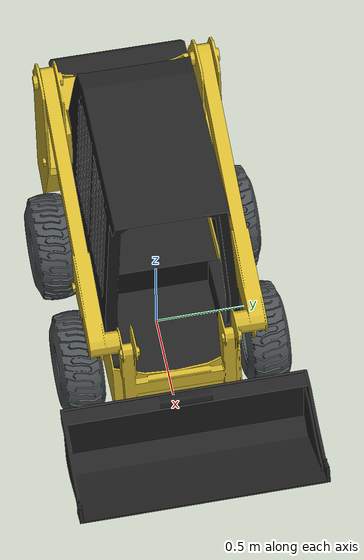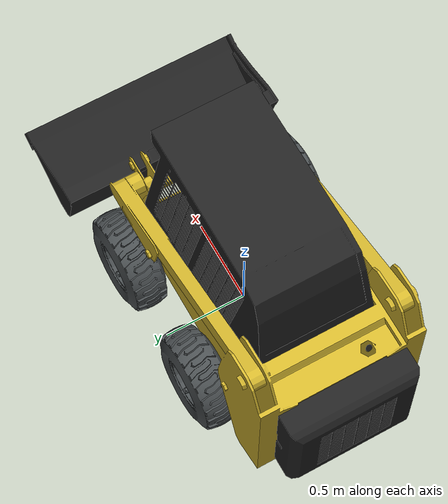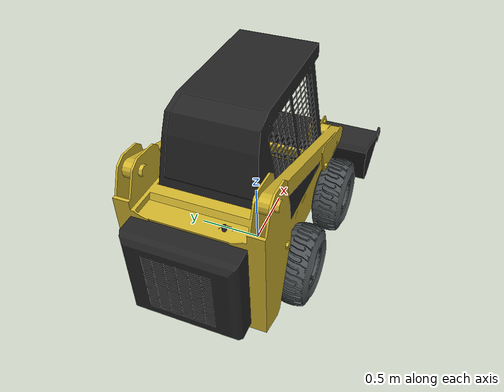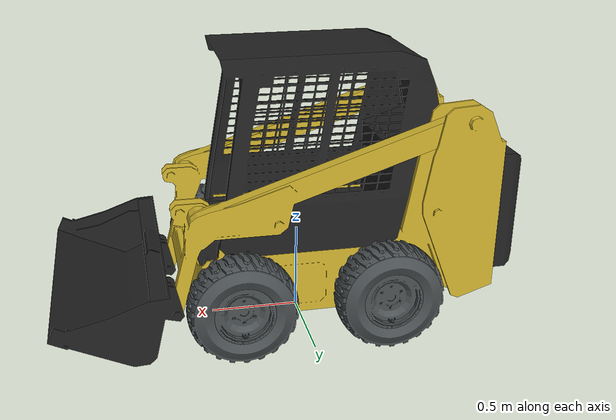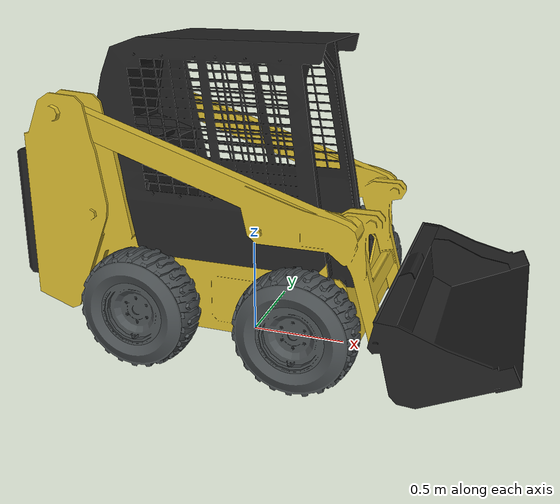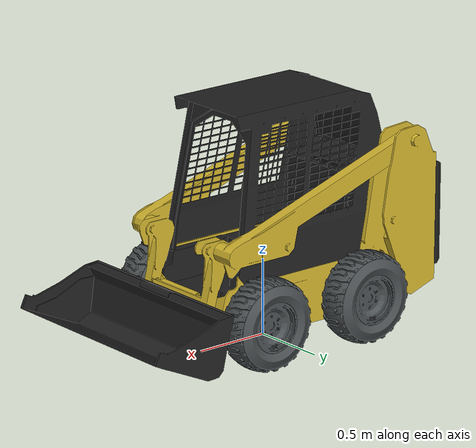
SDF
<?xml version="1.0"?>
<sdf version="1.10">
    <model name="skid-loader-635">
        <link name="arm_link">
            <pose>-0.83545 7e-05 1.23389 1.5708 0 0</pose>
            <inertial>
                <mass>200.0</mass>
                <inertia>
                    <ixx>2e-05</ixx>
                    <ixy>0</ixy>
                    <ixz>0</ixz>
                    <iyy>3e-05</iyy>
                    <iyz>0</iyz>
                    <izz>2e-05</izz>
                </inertia>
                <pose>0 0 0 0 0 0</pose>
            </inertial>
            <collision name="Boom">
                <pose>0 0 0 -1.5708 -1.5708 0</pose>
                <geometry>
                    <mesh>
                        <uri>model://skid-loader-635/meshes/Mesh.092.stl</uri>
                        <scale>1.0 1.0 1.0</scale>
                    </mesh>
                </geometry>
            </collision>
            <visual name="Boom">
                <pose>-5.960464477539063e-08 -1.1470236219168761e-11 0.0 -1.5707964897155762 -1.5707961320877075
                    0.0
                </pose>
                <material>
                    <ambient>0.81569 0.70196 0.70196 1.0</ambient>
                    <diffuse>0.81569 0.70196 0.17647 1.0</diffuse>
                    <specular>1.0 1.0 1.0 1.0</specular>
                </material>
                <geometry>
                    <mesh>
                        <uri>model://skid-loader-635/meshes/Mesh.003.stl</uri>
                        <scale>0.02261 0.02261 0.02261</scale>
                    </mesh>
                </geometry>
            </visual>
        </link>
        <link name="base_link">
            <pose>0 0 0 0 0 0</pose>
        </link>
        <link name="body_link">
            <pose>0 0 0.3 0 0 0</pose>
            <inertial>
                <mass>200.0</mass>
                <inertia>
                    <ixx>2e-05</ixx>
                    <ixy>0</ixy>
                    <ixz>0</ixz>
                    <iyy>2e-05</iyy>
                    <iyz>0</iyz>
                    <izz>3e-05</izz>
                </inertia>
                <pose>0 0 0 0 0 0</pose>
            </inertial>
            <collision name="body_frame">
                <pose>-0.17428 3e-05 0.43976 0 0 -1.5708</pose>
                <geometry>
                    <box>
                        <size>1.02686 1.68031 1.18317</size>
                    </box>
                </geometry>
            </collision>
            <visual name="body_frame">
                <pose>-3.552906802312475e-15 1.6200374375330284e-12 0.0 -1.1920928955078125e-07
                    1.1920928244535389e-07 -1.5707963705062866
                </pose>
                <material>
                    <ambient>0.81569 0.70196 0.70196 1.0</ambient>
                    <diffuse>0.81569 0.70196 0.17647 1.0</diffuse>
                    <specular>1.0 1.0 1.0 1.0</specular>
                </material>
                <geometry>
                    <mesh>
                        <uri>model://skid-loader-635/meshes/Mesh.019.stl</uri>
                        <scale>0.02261 0.02261 0.02261</scale>
                    </mesh>
                </geometry>
            </visual>
            <sensor name="navsat_sensor" type="navsat">
                <pose>0 0 0 0 0 0</pose>
                <topic>gnss_pos</topic>
                <update_rate>20</update_rate>
                <alwaysOn>1</alwaysOn>
                <visualize>1</visualize>
                <navsat>
                    <position_sensing>
                        <vertical>
                            <noise type='gaussian'>
                                <mean>0</mean>
                                <stddev>4.49158e-07</stddev> <!-- 5 cm in spherical coordinates-->
                                <bias_mean>0</bias_mean>
                            </noise>
                        </vertical>
                        <horizontal>
                            <noise type='gaussian'>
                                <mean>0</mean>
                                <stddev>1.8087389541e-07</stddev> <!-- 2 cm in spherical coordinates-->
                                <bias_mean>0</bias_mean>
                            </noise>
                        </horizontal>
                    </position_sensing>
                    <velocity_sensing>
                        <vertical>
                            <noise type='gaussian'>
                                <mean>0</mean>
                                <stddev>1.0</stddev>
                                <bias_mean>0</bias_mean>
                            </noise>
                        </vertical>
                        <horizontal>
                            <noise type='gaussian'>
                                <mean>0</mean>
                                <stddev>0.5</stddev>
                                <bias_mean>0</bias_mean>
                            </noise>
                        </horizontal>
                    </velocity_sensing>
                </navsat>
            </sensor>
            <sensor name="imu_sensor" type="imu">
                <always_on>1</always_on>
                <update_rate>100</update_rate>
                <visualize>true</visualize>
                <topic>imu</topic>
                <!-- Noise from ADIS16448 IMU -->
                <angular_velocity>
                    <x>
                        <noise type="gaussian">
                            <mean>0.0</mean>
                            <stddev>0.003393695767766752</stddev>
                            <bias_mean>0.008726646259971648</bias_mean>
                            <bias_stddev>3.878509448876288e-05</bias_stddev>
                            <dynamic_bias_stddev>0.008726646259971648</dynamic_bias_stddev>
                            <dynamic_bias_correlation_time>1000.0</dynamic_bias_correlation_time>
                            <precision>0</precision>
                        </noise>
                    </x>
                    <y>
                        <noise type="gaussian">
                            <mean>0.0</mean>
                            <stddev>0.003393695767766752</stddev>
                            <bias_mean>0.008726646259971648</bias_mean>
                            <bias_stddev>3.878509448876288e-05</bias_stddev>
                            <dynamic_bias_stddev>0.008726646259971648</dynamic_bias_stddev>
                            <dynamic_bias_correlation_time>1000.0</dynamic_bias_correlation_time>
                            <precision>0</precision>
                        </noise>
                    </y>
                    <z>
                        <noise type="gaussian">
                            <mean>0.0</mean>
                            <stddev>0.003393695767766752</stddev>
                            <bias_mean>0.008726646259971648</bias_mean>
                            <bias_stddev>3.878509448876288e-05</bias_stddev>
                            <dynamic_bias_stddev>0.008726646259971648</dynamic_bias_stddev>
                            <dynamic_bias_correlation_time>1000.0</dynamic_bias_correlation_time>
                            <precision>0</precision>
                        </noise>
                    </z>
                </angular_velocity>
                <linear_acceleration>
                    <x>
                        <noise type="gaussian">
                            <mean>0.0</mean>
                            <stddev>0.04</stddev>
                            <bias_mean>0.196</bias_mean>
                            <bias_stddev>0.006</bias_stddev>
                            <dynamic_bias_stddev>0.196</dynamic_bias_stddev>
                            <dynamic_bias_correlation_time>300.0</dynamic_bias_correlation_time>
                            <precision>0</precision>
                        </noise>
                    </x>
                    <y>
                        <noise type="gaussian">
                            <mean>0.0</mean>
                            <stddev>0.04</stddev>
                            <bias_mean>0.196</bias_mean>
                            <bias_stddev>0.006</bias_stddev>
                            <dynamic_bias_stddev>0.196</dynamic_bias_stddev>
                            <dynamic_bias_correlation_time>300.0</dynamic_bias_correlation_time>
                            <precision>0</precision>
                        </noise>
                    </y>
                    <z>
                        <noise type="gaussian">
                            <mean>0.0</mean>
                            <stddev>0.04</stddev>
                            <bias_mean>0.196</bias_mean>
                            <bias_stddev>0.006</bias_stddev>
                            <dynamic_bias_stddev>0.196</dynamic_bias_stddev>
                            <dynamic_bias_correlation_time>300.0</dynamic_bias_correlation_time>
                            <precision>0</precision>
                        </noise>
                    </z>
                </linear_acceleration>
            </sensor>
        </link>
        <link name="right_front_wheel_link">
            <pose>0.40254 -0.52145 0.29995 -1.5708 1.5708 0</pose>
            <inertial>
                <mass>50.0</mass>
                <inertia>
                    <ixx>2e-05</ixx>
                    <ixy>0</ixy>
                    <ixz>0</ixz>
                    <iyy>2e-05</iyy>
                    <iyz>0</iyz>
                    <izz>2e-05</izz>
                </inertia>
                <pose>0 0 0 0 0 0</pose>
            </inertial>
            <collision name="Wheel2">
                <pose>-0.00076 0 0.00737 -3.14159 0 -1.5708</pose>
                <geometry>
                    <cylinder>
                        <radius>0.29776</radius>
                        <length>0.23924</length>
                    </cylinder>
                </geometry>
            </collision>
            <visual name="Wheel2">
                <pose>5.886597875814914e-10 0.0 0.0 3.141592502593994 1.570796251296997 0.0</pose>
                <material>
                    <ambient>0.28627 0.30588 0.30588 1.0</ambient>
                    <diffuse>0.28627 0.30588 0.31373 1.0</diffuse>
                    <specular>1.0 1.0 1.0 1.0</specular>
                </material>
                <geometry>
                    <mesh>
                        <uri>model://skid-loader-635/meshes/Mesh.016.stl</uri>
                        <scale>0.02261 0.02261 0.02261</scale>
                    </mesh>
                </geometry>
            </visual>
        </link>
        <link name="right_rear_wheel_link">
            <pose>-0.40253 -0.52145 0.29995 -1.5708 1.5708 0</pose>
            <inertial>
                <mass>50.0</mass>
                <inertia>
                    <ixx>2e-05</ixx>
                    <ixy>0</ixy>
                    <ixz>0</ixz>
                    <iyy>2e-05</iyy>
                    <iyz>0</iyz>
                    <izz>2e-05</izz>
                </inertia>
                <pose>0 0 0 0 0 0</pose>
            </inertial>
            <collision name="Wheel2">
                <pose>0 0 0 -3.14159 0 -1.5708</pose>
                <geometry>
                    <cylinder>
                        <radius>0.29776</radius>
                        <length>0.23924</length>
                    </cylinder>
                </geometry>
            </collision>
            <visual name="Wheel4">
                <pose>-5.879954301235557e-10 0.0 0.0 3.141592502593994 1.570796251296997 0.0</pose>
                <material>
                    <ambient>0.28627 0.30588 0.30588 1.0</ambient>
                    <diffuse>0.28627 0.30588 0.31373 1.0</diffuse>
                    <specular>1.0 1.0 1.0 1.0</specular>
                </material>
                <geometry>
                    <mesh>
                        <uri>model://skid-loader-635/meshes/Mesh.018.stl</uri>
                        <scale>0.02261 0.02261 0.02261</scale>
                    </mesh>
                </geometry>
            </visual>
        </link>
        <link name="left_rear_wheel_link">
            <pose>-0.40253 0.52151 0.29995 -1.5708 -1.5708 0</pose>
            <inertial>
                <mass>50.0</mass>
                <inertia>
                    <ixx>2e-05</ixx>
                    <ixy>0</ixy>
                    <ixz>0</ixz>
                    <iyy>2e-05</iyy>
                    <iyz>0</iyz>
                    <izz>2e-05</izz>
                </inertia>
                <pose>0 0 0 0 0 0</pose>
            </inertial>
            <collision name="Wheel2">
                <pose>0 0 0 -3.14159 0 1.5708</pose>
                <geometry>
                    <cylinder>
                        <radius>0.29776</radius>
                        <length>0.23924</length>
                    </cylinder>
                </geometry>
            </collision>
            <visual name="Wheel3">
                <pose>1.1031119129256695e-08 0.0 0.0 7.549789415861596e-08 1.570796251296997 0.0</pose>
                <material>
                    <ambient>0.28627 0.30588 0.30588 1.0</ambient>
                    <diffuse>0.28627 0.30588 0.31373 1.0</diffuse>
                    <specular>1.0 1.0 1.0 1.0</specular>
                </material>
                <geometry>
                    <mesh>
                        <uri>model://skid-loader-635/meshes/Mesh.017.stl</uri>
                        <scale>0.02261 0.02261 0.02261</scale>
                    </mesh>
                </geometry>
            </visual>
        </link>
        <link name="left_front_wheel_link">
            <pose>0.40254 0.52137 0.30016 -1.5708 -1.5708 0</pose>
            <inertial>
                <mass>50.0</mass>
                <inertia>
                    <ixx>2e-05</ixx>
                    <ixy>0</ixy>
                    <ixz>0</ixz>
                    <iyy>2e-05</iyy>
                    <iyz>0</iyz>
                    <izz>2e-05</izz>
                </inertia>
                <pose>0 0 0 0 0 0</pose>
            </inertial>
            <collision name="Wheel2">
                <pose>0 0 0 -3.14159 0 1.5708</pose>
                <geometry>
                    <cylinder>
                        <radius>0.29776</radius>
                        <length>0.23924</length>
                    </cylinder>
                </geometry>
            </collision>
            <visual name="Wheel1">
                <pose>-1.1029378299554082e-08 0.0 0.0 7.549789415861596e-08 1.570796251296997 0.0</pose>
                <material>
                    <ambient>0.28627 0.30588 0.30588 1.0</ambient>
                    <diffuse>0.28627 0.30588 0.31373 1.0</diffuse>
                    <specular>1.0 1.0 1.0 1.0</specular>
                </material>
                <geometry>
                    <mesh>
                        <uri>model://skid-loader-635/meshes/Mesh.015.stl</uri>
                        <scale>0.02261 0.02261 0.02261</scale>
                    </mesh>
                </geometry>
            </visual>
        </link>
        <link name="bucket_link">
            <pose>0.73721 3e-05 0.17884 1.5708 0 0</pose>
            <inertial>
                <mass>200.0</mass>
                <inertia>
                    <ixx>2e-05</ixx>
                    <ixy>0</ixy>
                    <ixz>0</ixz>
                    <iyy>2e-05</iyy>
                    <iyz>0</iyz>
                    <izz>2e-05</izz>
                </inertia>
                <pose>0 0 0 0 0 0</pose>
            </inertial>
            <collision name="bucket">
                <pose>0 0 0 -1.13351 -1.5708 0</pose>
                <geometry>
                    <mesh>
                        <uri>model://skid-loader-635/meshes/Mesh.100.stl</uri>
                        <scale>1.0 1.0 1.0</scale>
                    </mesh>
                </geometry>
            </collision>
            <visual name="bucket_visual">
                <pose>0.0 2.9796778377999544e-08 3.637978807091713e-12 -1.1335108280181885 -1.5707961320877075 0.0
                </pose>
                <material>
                    <ambient>0.12941 0.12941 0.12941 1.0</ambient>
                    <diffuse>0.12941 0.12941 0.12941 1.0</diffuse>
                    <specular>1.0 1.0 1.0 1.0</specular>
                </material>
                <geometry>
                    <mesh>
                        <uri>model://skid-loader-635/meshes/Mesh.026.stl</uri>
                        <scale>0.02261 0.02261 0.02261</scale>
                    </mesh>
                </geometry>
            </visual>
        </link>
        <link name="engine_visual_link">
            <pose>-1.18554 0.00366 0.67313 1.5708 0 -1.5708</pose>
            <inertial>
                <mass>200.0</mass>
                <inertia>
                    <ixx>2e-05</ixx>
                    <ixy>0</ixy>
                    <ixz>0</ixz>
                    <iyy>2e-05</iyy>
                    <iyz>0</iyz>
                    <izz>2e-05</izz>
                </inertia>
                <pose>-0.02138 -0.10455 -0.13168 0 0 0</pose>
            </inertial>
            <collision name="EngineCover">
                <pose>0.00287 0.02425 -0.12881 0 0 0</pose>
                <geometry>
                    <box>
                        <size>0.7654 0.73749 0.27329</size>
                    </box>
                </geometry>
            </collision>
            <visual name="EngineCover">
                <pose>0.0 -7.782976041426082e-09 0.0 0.0 -0.0 1.4632987352082918e-22</pose>
                <material>
                    <ambient>0.12941 0.12941 0.12941 1.0</ambient>
                    <diffuse>0.12941 0.12941 0.12941 1.0</diffuse>
                    <specular>1.0 1.0 1.0 1.0</specular>
                </material>
                <geometry>
                    <mesh>
                        <uri>model://skid-loader-635/meshes/Mesh.104.stl</uri>
                        <scale>0.02261 0.02261 0.02261</scale>
                    </mesh>
                </geometry>
            </visual>
        </link>
        <link name="cage_link">
            <pose>0.01387 2e-05 1.05024 0 0 0</pose>
            <inertial>
                <mass>200.0</mass>
                <inertia>
                    <ixx>2e-05</ixx>
                    <ixy>0</ixy>
                    <ixz>0</ixz>
                    <iyy>3e-05</iyy>
                    <iyz>0</iyz>
                    <izz>2e-05</izz>
                </inertia>
                <pose>-0.27759 3e-05 0.00728 0 0 0</pose>
            </inertial>
            <collision name="Cabine Out">
                <pose>-0.1388 1e-05 0.00364 0 0 -1.5708</pose>
                <geometry>
                    <box>
                        <size>0.73701 1.2443 1.07031</size>
                    </box>
                </geometry>
            </collision>
            <visual name="cabin_cage">
                <pose>-0.01386982947587967 -2.0612314983736724e-05 -0.7502354979515076 -1.1920928244535389e-07 -0.0
                    -1.5707964897155762
                </pose>
                <material>
                    <ambient>0.12941 0.12941 0.12941 1.0</ambient>
                    <diffuse>0.12941 0.12941 0.12941 1.0</diffuse>
                    <specular>1.0 1.0 1.0 1.0</specular>
                </material>
                <geometry>
                    <mesh>
                        <uri>model://skid-loader-635/meshes/Mesh.090.stl</uri>
                        <scale>0.02261 0.02261 0.02261</scale>
                    </mesh>
                </geometry>
            </visual>
        </link>
        <link name="link_body_imu_sensor">
            <pose>-0.91418 2e-05 1.01588 0 0 0</pose>
        </link>
        <link name="link_GNSS1_sensor">
            <pose>0 0 0 0 0 0</pose>
        </link>
        <joint name="arm_joint" type="fixed">
            <parent>body_link</parent>
            <child>arm_link</child>
            <pose>0.0 0.0 0.0 0.0 0.0 0.0</pose>
        </joint>
        <joint name="body_joint" type="fixed">
            <parent>base_link</parent>
            <child>body_link</child>
            <pose>0.0 0.0 0.0 0.0 0.0 0.0</pose>
        </joint>
        <joint name="right_front_wheel_joint" type="revolute">
            <parent>body_link</parent>
            <child>right_front_wheel_link</child>
            <pose>0.0 0.0 0.0 0.0 0.0 0.0</pose>
            <axis>
                <xyz>0 0 1.0</xyz>
            </axis>
        </joint>
        <joint name="right_rear_wheel_joint" type="revolute">
            <parent>body_link</parent>
            <child>right_rear_wheel_link</child>
            <pose>0.0 0.0 0.0 0.0 0.0 0.0</pose>
            <axis>
                <xyz>0 0 1.0</xyz>
            </axis>
        </joint>
        <joint name="left_rear_wheel_joint" type="revolute">
            <parent>body_link</parent>
            <child>left_rear_wheel_link</child>
            <pose>0.0 0.0 0.0 0.0 0.0 0.0</pose>
            <axis>
                <xyz>0 0 1.0</xyz>
            </axis>
        </joint>
        <joint name="left_front_wheel_joint" type="revolute">
            <parent>body_link</parent>
            <child>left_front_wheel_link</child>
            <pose>0.0 0.0 0.0 0.0 0.0 0.0</pose>
            <axis>
                <xyz>0 0 1.0</xyz>
            </axis>
        </joint>
        <joint name="bucket_joint" type="fixed">
            <parent>arm_link</parent>
            <child>bucket_link</child>
            <pose>0.0 0.0 0.0 0.0 0.0 0.0</pose>
        </joint>
        <joint name="engine_visual_joint" type="fixed">
            <parent>body_link</parent>
            <child>engine_visual_link</child>
            <pose>0.0 0.0 0.0 0.0 0.0 0.0</pose>
        </joint>
        <joint name="cage_visual_joint" type="fixed">
            <parent>body_link</parent>
            <child>cage_link</child>
            <pose>0.0 0.0 0.0 0.0 0.0 0.0</pose>
        </joint>
        <joint name="body_imu_joint" type="fixed">
            <parent>base_link</parent>
            <child>link_body_imu_sensor</child>
            <pose>0.0 0.0 0.0 0.0 0.0 0.0</pose>
        </joint>
        <joint name="gnss_sensor_joint" type="fixed">
            <parent>body_link</parent>
            <child>link_GNSS1_sensor</child>
            <pose>0.0 0.0 0.0 0.0 0.0 0.0</pose>
        </joint>
        <!--diff drive plugin-->
        <plugin
                filename="gz-sim-diff-drive-system"
                name="gz::sim::systems::DiffDrive">
            <num_wheel_pairs>2</num_wheel_pairs>
            <left_joint>left_front_wheel_joint</left_joint>
            <right_joint>right_front_wheel_joint</right_joint>
            <left_joint>left_rear_wheel_joint</left_joint>
            <right_joint>right_rear_wheel_joint</right_joint>
            <wheel_separation>1.03</wheel_separation>
            <wheel_radius>0.3</wheel_radius>
            <odom_publish_frequency>0</odom_publish_frequency>
            <odom_topic>drive/odom</odom_topic>>
            <topic>cmd_vel</topic>
            <max_linear_acceleration>3</max_linear_acceleration>
            <min_linear_acceleration>-3</min_linear_acceleration>
            <max_angular_acceleration>5</max_angular_acceleration>
            <min_angular_acceleration>-5</min_angular_acceleration>
            <max_linear_velocity>10.5</max_linear_velocity>
            <min_linear_velocity>-10.5</min_linear_velocity>
            <max_angular_velocity>5</max_angular_velocity>
            <min_angular_velocity>-5</min_angular_velocity>
            <child_frame_id>skid-loader-635/base_link</child_frame_id>
        </plugin>
        <plugin
                filename="gz-sim-odometry-publisher-system"
                name="gz::sim::systems::OdometryPublisher">
            <publish_link_pose>true</publish_link_pose>
            <publish_collision_pose>false</publish_collision_pose>
            <publish_visual_pose>false</publish_visual_pose>
            <publish_nested_model_pose>false</publish_nested_model_pose>
            <robot_base_frame>base_link</robot_base_frame>
            <gaussian_noise>0.0</gaussian_noise>
            <dimensions>3</dimensions>
            <odom_topic>base_link_true_pose/odom</odom_topic>
            <odom_publish_frequency>100</odom_publish_frequency> <!-- Matches fastest sensor input -->
        </plugin>
        <!-- Logging -->
        <plugin
                filename="gz-sim-pose-publisher-system"
                name="gz::sim::systems::PosePublisher">
            <publish_link_pose>true</publish_link_pose>
            <publish_sensor_pose>true</publish_sensor_pose>
            <publish_collision_pose>false</publish_collision_pose>
            <publish_visual_pose>false</publish_visual_pose>
            <publish_nested_model_pose>false</publish_nested_model_pose>
        </plugin>
        <plugin
                filename="InsCsvLogger"
                name="csv_logger::csv_logger">
        </plugin>
    </model>
</sdf>
